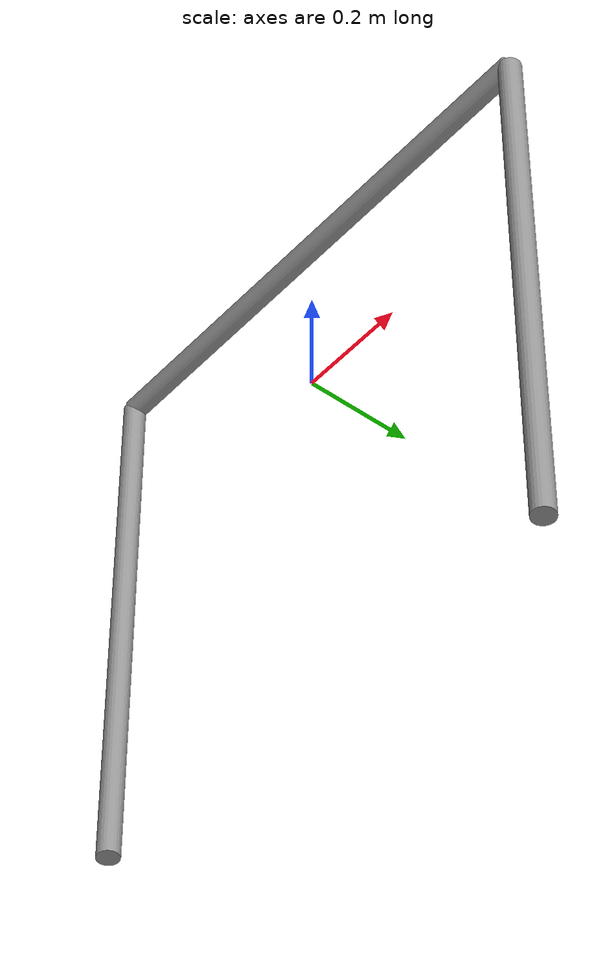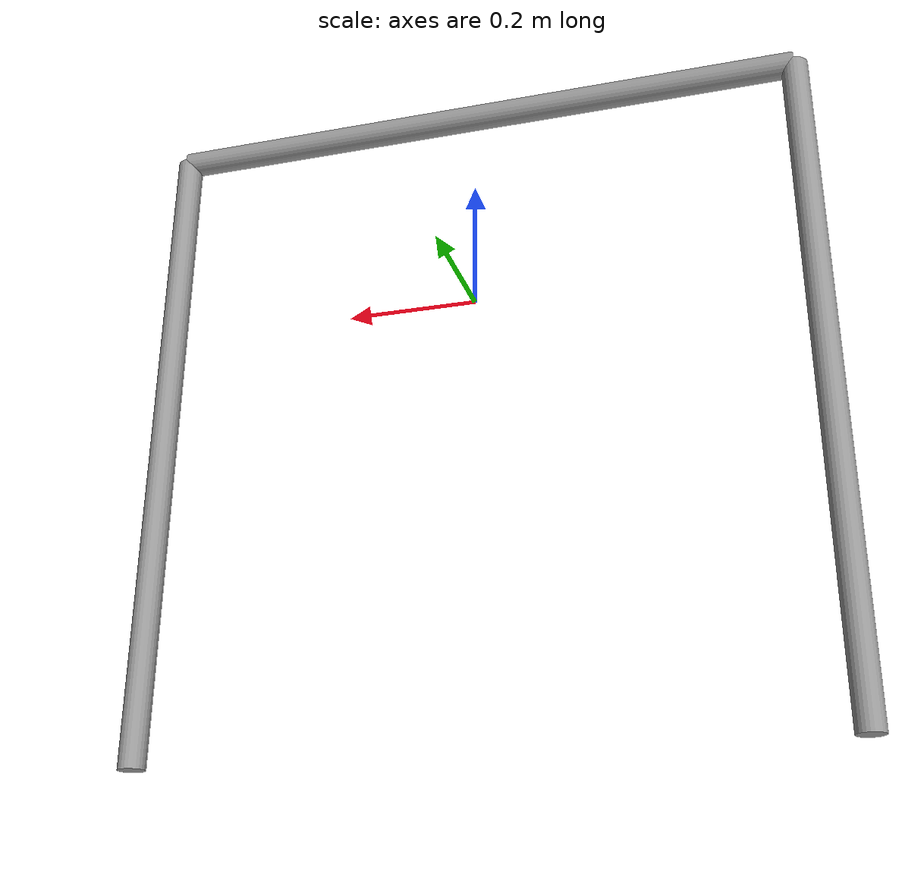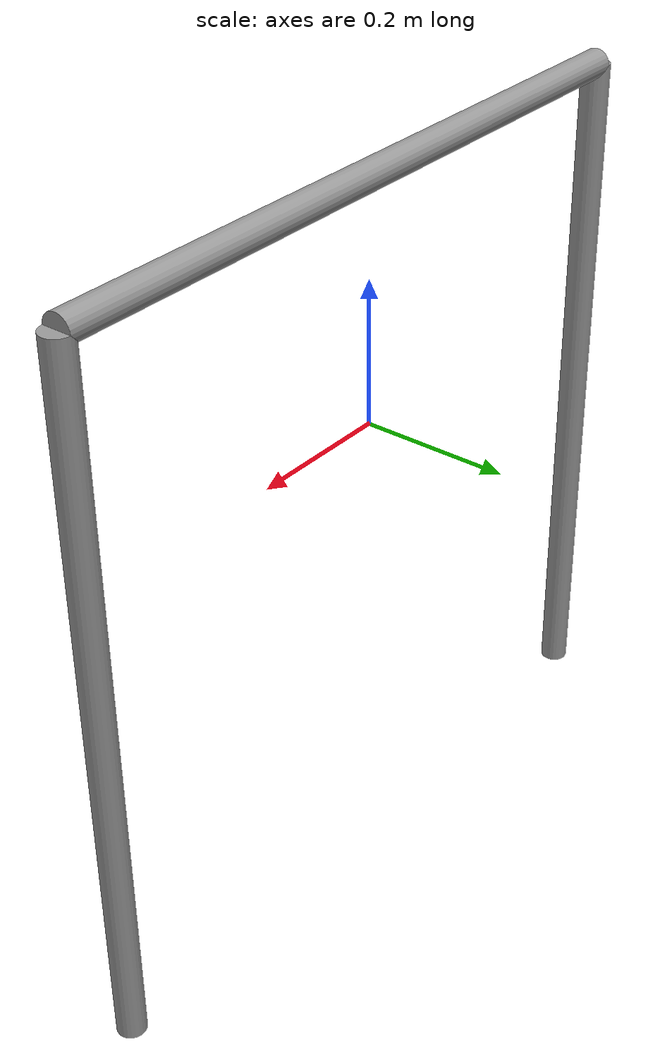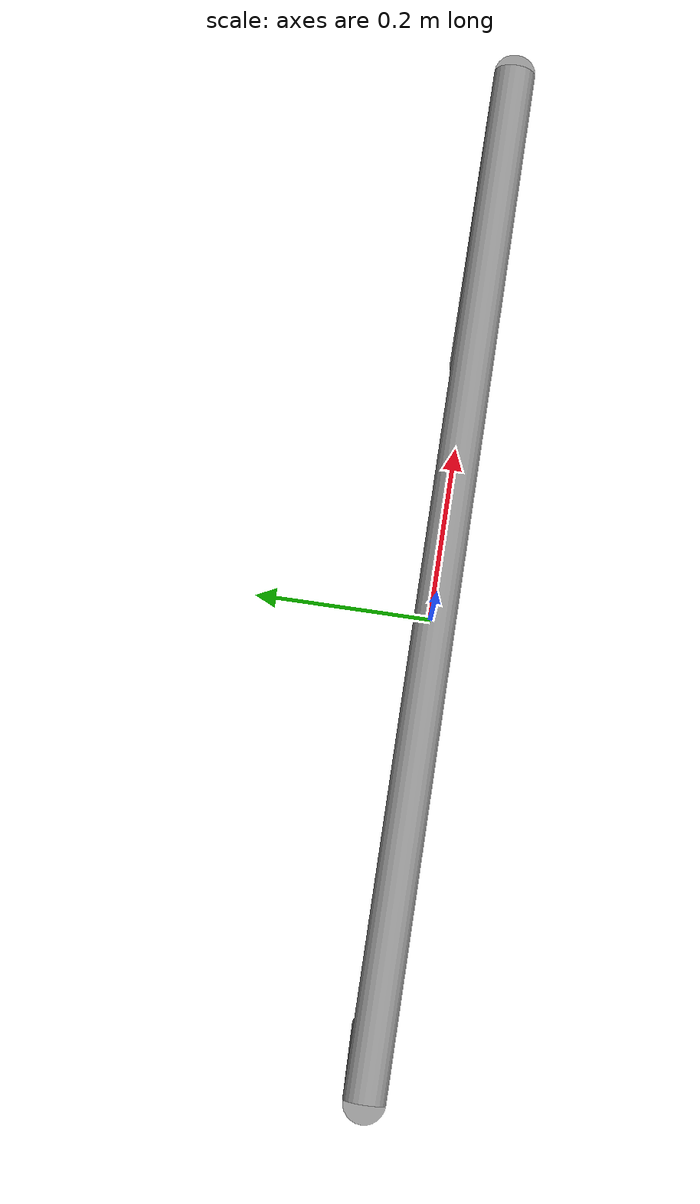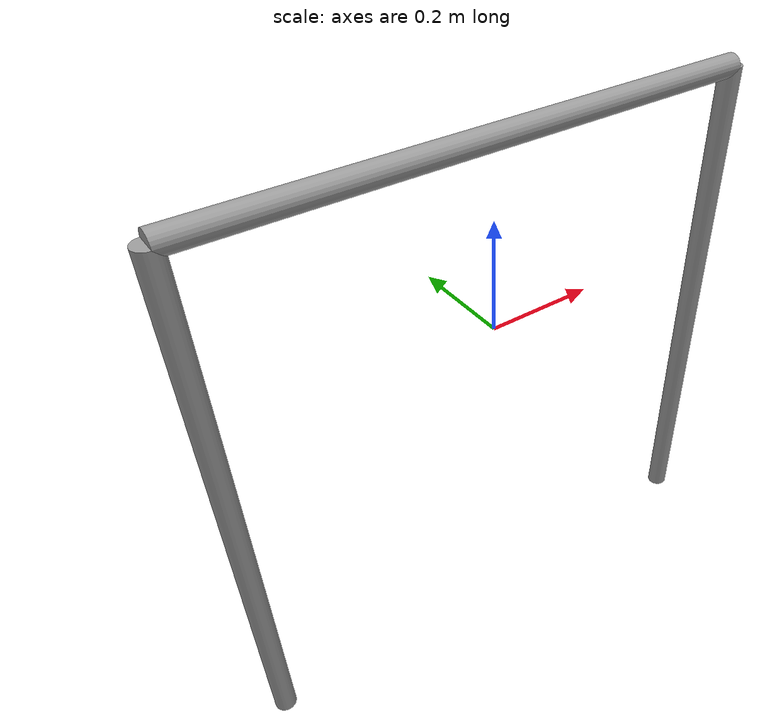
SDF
<?xml version='1.0'?>
<sdf version='1.6'>
  <model name='simple_gate'>
    <link name='pillar_left'>
      <pose frame=''>-0.5 0 -0.166667 0 -0 0</pose>
      <inertial>
        <mass>1</mass>
        <inertia>
          <ixx>0.145833</ixx>
          <ixy>0</ixy>
          <ixz>0</ixz>
          <iyy>0.145833</iyy>
          <iyz>0</iyz>
          <izz>0.125</izz>
        </inertia>
        <pose frame=''>0 0 0 0 -0 0</pose>
      </inertial>
      <gravity>1</gravity>
      <self_collide>0</self_collide>
      <kinematic>0</kinematic>
      <visual name='visual'>
        <pose frame=''>0 0 0 0 -0 0</pose>
        <geometry>
          <cylinder>
            <radius>0.02</radius>
            <length>1</length>
          </cylinder>
        </geometry>
        <material>
          <lighting>1</lighting>
          <script>
            <uri>file://media/materials/scripts/gazebo.material</uri>
            <name>Gazebo/Grey</name>
          </script>
          <ambient>0.3 0.3 0.3 1</ambient>
          <diffuse>0.7 0.7 0.7 1</diffuse>
          <specular>0.01 0.01 0.01 1</specular>
          <emissive>0 0 0 1</emissive>
          <shader type='vertex'>
            <normal_map>__default__</normal_map>
          </shader>
        </material>
        <cast_shadows>1</cast_shadows>
        <transparency>0</transparency>
      </visual>
      <collision name='collision'>
        <laser_retro>0</laser_retro>
        <max_contacts>10</max_contacts>
        <pose frame=''>0 0 0 0 -0 0</pose>
        <geometry>
          <cylinder>
            <radius>0.02</radius>
            <length>1</length>
          </cylinder>
        </geometry>
        <surface>
          <friction>
            <ode>
              <mu>1</mu>
              <mu2>1</mu2>
              <fdir1>0 0 0</fdir1>
              <slip1>0</slip1>
              <slip2>0</slip2>
            </ode>
            <torsional>
              <coefficient>1</coefficient>
              <patch_radius>0</patch_radius>
              <surface_radius>0</surface_radius>
              <use_patch_radius>1</use_patch_radius>
              <ode>
                <slip>0</slip>
              </ode>
            </torsional>
          </friction>
          <bounce>
            <restitution_coefficient>0</restitution_coefficient>
            <threshold>1e+06</threshold>
          </bounce>
          <contact>
            <collide_without_contact>0</collide_without_contact>
            <collide_without_contact_bitmask>1</collide_without_contact_bitmask>
            <collide_bitmask>1</collide_bitmask>
            <ode>
              <soft_cfm>0</soft_cfm>
              <soft_erp>0.2</soft_erp>
              <kp>1e+13</kp>
              <kd>1</kd>
              <max_vel>0.01</max_vel>
              <min_depth>0</min_depth>
            </ode>
            <bullet>
              <split_impulse>1</split_impulse>
              <split_impulse_penetration_threshold>-0.01</split_impulse_penetration_threshold>
              <soft_cfm>0</soft_cfm>
              <soft_erp>0.2</soft_erp>
              <kp>1e+13</kp>
              <kd>1</kd>
            </bullet>
          </contact>
        </surface>
      </collision>
    </link>
    <link name='pillar_right'>
      <pose frame=''>0.5 0 -0.166667 0 -0 0</pose>
      <inertial>
        <mass>1</mass>
        <inertia>
          <ixx>0.145833</ixx>
          <ixy>0</ixy>
          <ixz>0</ixz>
          <iyy>0.145833</iyy>
          <iyz>0</iyz>
          <izz>0.125</izz>
        </inertia>
        <pose frame=''>0 0 0 0 -0 0</pose>
      </inertial>
      <self_collide>0</self_collide>
      <kinematic>0</kinematic>
      <gravity>1</gravity>
      <visual name='visual'>
        <pose frame=''>0 0 0 0 -0 0</pose>
        <geometry>
          <cylinder>
            <radius>0.02</radius>
            <length>1</length>
          </cylinder>
        </geometry>
        <material>
          <lighting>1</lighting>
          <script>
            <uri>file://media/materials/scripts/gazebo.material</uri>
            <name>Gazebo/Grey</name>
          </script>
          <ambient>0.3 0.3 0.3 1</ambient>
          <diffuse>0.7 0.7 0.7 1</diffuse>
          <specular>0.01 0.01 0.01 1</specular>
          <emissive>0 0 0 1</emissive>
          <shader type='vertex'>
            <normal_map>__default__</normal_map>
          </shader>
        </material>
        <cast_shadows>1</cast_shadows>
        <transparency>0</transparency>
      </visual>
      <collision name='collision'>
        <laser_retro>0</laser_retro>
        <max_contacts>10</max_contacts>
        <pose frame=''>0 0 0 0 -0 0</pose>
        <geometry>
          <cylinder>
            <radius>0.02</radius>
            <length>1</length>
          </cylinder>
        </geometry>
        <surface>
          <friction>
            <ode>
              <mu>1</mu>
              <mu2>1</mu2>
              <fdir1>0 0 0</fdir1>
              <slip1>0</slip1>
              <slip2>0</slip2>
            </ode>
            <torsional>
              <coefficient>1</coefficient>
              <patch_radius>0</patch_radius>
              <surface_radius>0</surface_radius>
              <use_patch_radius>1</use_patch_radius>
              <ode>
                <slip>0</slip>
              </ode>
            </torsional>
          </friction>
          <bounce>
            <restitution_coefficient>0</restitution_coefficient>
            <threshold>1e+06</threshold>
          </bounce>
          <contact>
            <collide_without_contact>0</collide_without_contact>
            <collide_without_contact_bitmask>1</collide_without_contact_bitmask>
            <collide_bitmask>1</collide_bitmask>
            <ode>
              <soft_cfm>0</soft_cfm>
              <soft_erp>0.2</soft_erp>
              <kp>1e+13</kp>
              <kd>1</kd>
              <max_vel>0.01</max_vel>
              <min_depth>0</min_depth>
            </ode>
            <bullet>
              <split_impulse>1</split_impulse>
              <split_impulse_penetration_threshold>-0.01</split_impulse_penetration_threshold>
              <soft_cfm>0</soft_cfm>
              <soft_erp>0.2</soft_erp>
              <kp>1e+13</kp>
              <kd>1</kd>
            </bullet>
          </contact>
        </surface>
      </collision>
    </link>
    <link name='pillar_top'>
      <pose frame=''>0 0 0.333333 1.57084 0 1.5708</pose>
      <inertial>
        <mass>1</mass>
        <inertia>
          <ixx>0.145833</ixx>
          <ixy>0</ixy>
          <ixz>0</ixz>
          <iyy>0.145833</iyy>
          <iyz>0</iyz>
          <izz>0.125</izz>
        </inertia>
        <pose frame=''>0 0 0 0 -0 0</pose>
      </inertial>
      <self_collide>0</self_collide>
      <kinematic>0</kinematic>
      <gravity>1</gravity>
      <visual name='visual'>
        <pose frame=''>0 0 0 0 -0 0</pose>
        <geometry>
          <cylinder>
            <radius>0.02</radius>
            <length>1</length>
          </cylinder>
        </geometry>
        <material>
          <lighting>1</lighting>
          <script>
            <uri>file://media/materials/scripts/gazebo.material</uri>
            <name>Gazebo/Grey</name>
          </script>
          <ambient>0.3 0.3 0.3 1</ambient>
          <diffuse>0.7 0.7 0.7 1</diffuse>
          <specular>0.01 0.01 0.01 1</specular>
          <emissive>0 0 0 1</emissive>
          <shader type='vertex'>
            <normal_map>__default__</normal_map>
          </shader>
        </material>
        <cast_shadows>1</cast_shadows>
        <transparency>0</transparency>
      </visual>
      <collision name='collision'>
        <laser_retro>0</laser_retro>
        <max_contacts>10</max_contacts>
        <pose frame=''>0 0 0 0 -0 0</pose>
        <geometry>
          <cylinder>
            <radius>0.02</radius>
            <length>1</length>
          </cylinder>
        </geometry>
        <surface>
          <friction>
            <ode>
              <mu>1</mu>
              <mu2>1</mu2>
              <fdir1>0 0 0</fdir1>
              <slip1>0</slip1>
              <slip2>0</slip2>
            </ode>
            <torsional>
              <coefficient>1</coefficient>
              <patch_radius>0</patch_radius>
              <surface_radius>0</surface_radius>
              <use_patch_radius>1</use_patch_radius>
              <ode>
                <slip>0</slip>
              </ode>
            </torsional>
          </friction>
          <bounce>
            <restitution_coefficient>0</restitution_coefficient>
            <threshold>1e+06</threshold>
          </bounce>
          <contact>
            <collide_without_contact>0</collide_without_contact>
            <collide_without_contact_bitmask>1</collide_without_contact_bitmask>
            <collide_bitmask>1</collide_bitmask>
            <ode>
              <soft_cfm>0</soft_cfm>
              <soft_erp>0.2</soft_erp>
              <kp>1e+13</kp>
              <kd>1</kd>
              <max_vel>0.01</max_vel>
              <min_depth>0</min_depth>
            </ode>
            <bullet>
              <split_impulse>1</split_impulse>
              <split_impulse_penetration_threshold>-0.01</split_impulse_penetration_threshold>
              <soft_cfm>0</soft_cfm>
              <soft_erp>0.2</soft_erp>
              <kp>1e+13</kp>
              <kd>1</kd>
            </bullet>
          </contact>
        </surface>
      </collision>
    </link>
    <joint name='link_t_r_JOINT_0' type='fixed'>
      <parent>pillar_top</parent>
      <child>pillar_right</child>
      <pose frame=''>0 0 0 0 -0 0</pose>
      <physics>
        <ode>
          <limit>
            <cfm>0</cfm>
            <erp>0.2</erp>
          </limit>
          <suspension>
            <cfm>0</cfm>
            <erp>0.2</erp>
          </suspension>
        </ode>
      </physics>
    </joint>
    <joint name='link_t_l_JOINT_1' type='fixed'>
      <parent>pillar_top</parent>
      <child>pillar_left</child>
      <pose frame=''>0 0 0 0 -0 0</pose>
      <physics>
        <ode>
          <limit>
            <cfm>0</cfm>
            <erp>0.2</erp>
          </limit>
          <suspension>
            <cfm>0</cfm>
            <erp>0.2</erp>
          </suspension>
        </ode>
      </physics>
    </joint>
    <static>0</static>
    <allow_auto_disable>1</allow_auto_disable>
    <static>1</static>

  </model>
</sdf>
